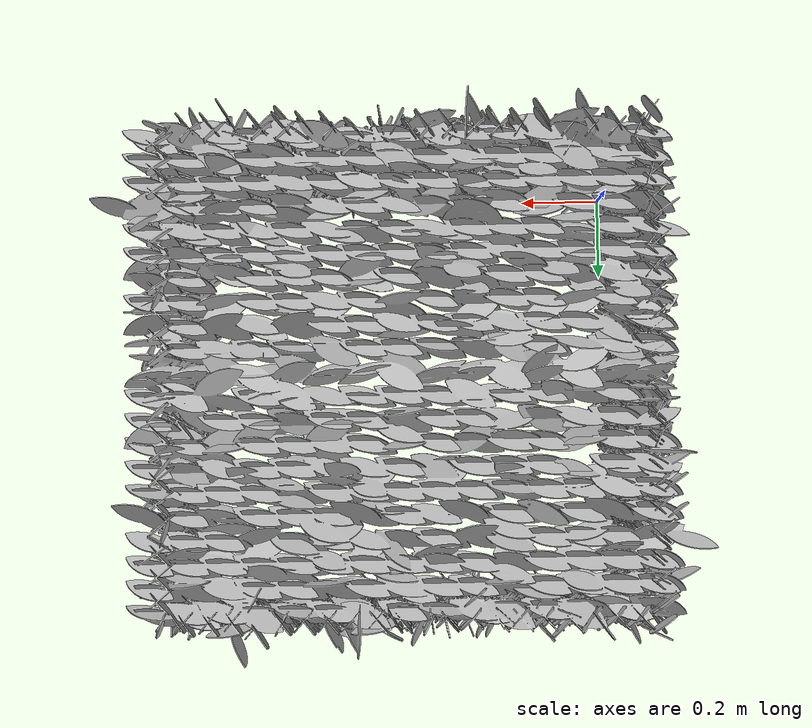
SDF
<?xml version='1.0'?>
<sdf version='1.4'>
  <model name="bush_3">
    <static>true</static>
    <pose>0 0 0 0 0 0</pose>

    <link name="bush_3">
      <visual name="bush_3">
        <geometry>
          <mesh>
            <uri>model://bush_3/bush_3.dae</uri>
          </mesh>
        </geometry>s
      </visual>
      <collision name="bush_3">
        <geometry>
          <mesh>
            <uri>model://bush_3/bush_3.dae</uri>
          </mesh>
        </geometry>
      </collision>
    </link>

  </model>
</sdf>
